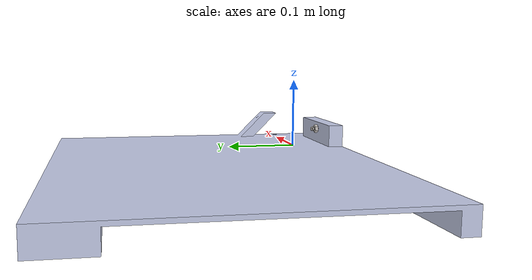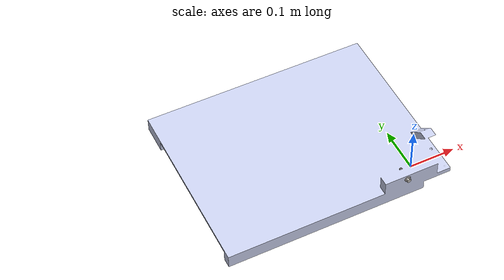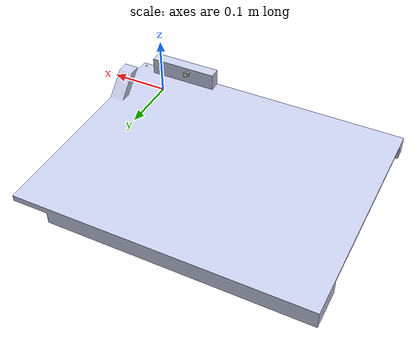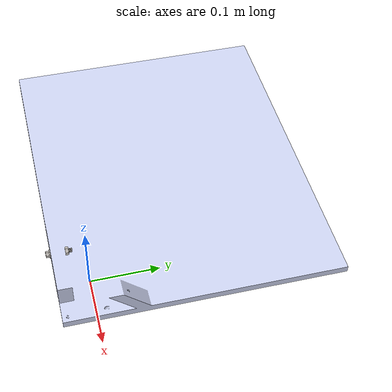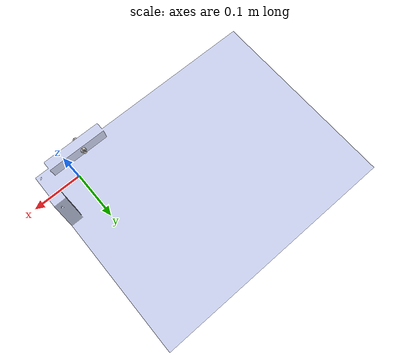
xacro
<?xml version="1.0" encoding="utf-8"?>
<robot   name="battery_pack_describe"  xmlns:xacro="http://www.ros.org/wiki/xacro">
  <link
    name="h_battery_base_link">
    <inertial>
      <origin
        xyz="-0.17823 0.0014541 -0.18254"
        rpy="0 0 0" />
      <mass
        value="2.1452" />
      <inertia
        ixx="0.04437"
        ixy="-0.00066651"
        ixz="-0.0054047"
        iyy="0.089539"
        iyz="-0.0010719"
        izz="0.045613" />
    </inertial>
    <visual>
      <origin
        xyz="0 0 0"
        rpy="0 0 0" />
      <geometry>
        <mesh     filename="package://battery_pack_describe/meshes/v_battery_base_link.dae" />

      </geometry>
      <material
        name="">
        <color
          rgba="0.79216 0.81961 0.93333 1" />
      </material>
    </visual>
    <collision>
      <origin
        xyz="0 0 0"
        rpy="0 0 0" />
      <geometry>
        <box size="0.5 0.5 0.05" />
        <mesh     filename="package://battery_pack_describe/meshes/v_battery_base_link.dae" />
      </geometry>
    </collision>
  </link>

  <gazebo reference="h_battery_base_link">
      <maxVel>0.01</maxVel>
      <kd>1</kd>
      <maxContacts>20</maxContacts>
      <mu2>50000</mu2>
      <selfCollide>0</selfCollide>
      <mu1>50000</mu1>
      <minDepth>0</minDepth>
      <kp>1000000000000.0</kp>
  </gazebo>

  <link
    name="h_bolt_Link">
    <inertial>
      <origin
        xyz="-0.0222479735541268 -9.0784925931009E-10 2.52273613804421E-09"
        rpy="0 0 0" />
      <mass
        value="0.010043058879212" />
      <inertia
        ixx="8.16036465000951E-08"
        ixy="-1.00752974041648E-13"
        ixz="2.77939961727333E-13"
        iyy="1.22914693737395E-06"
        iyz="-1.20094091925575E-13"
        izz="1.22914681810822E-06" />
    </inertial>
    <visual>
      <origin
        xyz="0 0 0"
        rpy="0 0 0" />
      <geometry>
        <mesh
          filename="package://battery_pack_describe/meshes/h_bolt_Link.STL" />
      </geometry>
      <material
        name="">
        <color
          rgba="0.776470588235294 0.756862745098039 0.737254901960784 1" />
      </material>
    </visual>
    <collision>
      <origin
        xyz="0 0 0"
        rpy="0 0 0" />
      <geometry>
        <cylinder length="0.04" radius="0.02"/>
        <mesh
          filename="package://battery_pack_describe/meshes/h_bolt_Link.STL" />
      </geometry>
    </collision>
  </link>

  <gazebo reference="h_bolt_Link">
      <maxVel>0.01</maxVel>
      <kd>1</kd>
      <maxContacts>20</maxContacts>
      <mu2>50000</mu2>
      <selfCollide>0</selfCollide>
      <mu1>50000</mu1>
      <minDepth>0</minDepth>
      <kp>1000000000000.0</kp>
    <material>Gazebo/Grey </material>
  </gazebo>

  <joint
    name="h_bolt_joint"
    type="continuous">
    <origin
      xyz="-0.036344 -0.016452 0.03"
      rpy="1.9639 0 1.5708" />
    <parent
      link="h_battery_base_link" />
    <child
      link="h_bolt_Link" />
    <axis
      xyz="1 0 0" />
  </joint>
  <link
    name="h_nut_Link">
    <inertial>
      <origin
        xyz="-8.23260334903431E-10 6.93889390390723E-18 -0.0026006024331304"
        rpy="0 0 0" />
      <mass
        value="0.00265736664598247" />
      <inertia
        ixx="2.79753045005072E-08"
        ixy="4.13590306276514E-24"
        ixz="1.31793635416195E-18"
        iyy="2.79771327058772E-08"
        iyz="-4.83267733668677E-14"
        izz="4.46160415460722E-08" />
    </inertial>
    <visual>
      <origin
        xyz="0 0 0"
        rpy="0 0 0" />
      <geometry>
        <mesh
          filename="package://battery_pack_describe/meshes/h_nut_Link.STL" />
      </geometry>
      <material
        name="">
        <color
          rgba="0.776470588235294 0.756862745098039 0.737254901960784 1" />
      </material>
    </visual>
    <collision>
      <origin
        xyz="0 0 0"
        rpy="0 0 0" />
      <geometry>
        <mesh
          filename="package://battery_pack_describe/meshes/h_nut_Link.STL" />
      </geometry>
    </collision>
  </link>

      <gazebo reference="h_nut_Link">
    <material>Gazebo/Gray</material>
  </gazebo>

  <joint
    name="h_nut_joint"
    type="continuous">
    <origin
      xyz="-0.036344 -0.021252 0.03"
      rpy="1.5708 0.39309 -3.1416" />
    <parent
      link="h_battery_base_link" />
    <child
      link="h_nut_Link" />
    <axis
      xyz="0 0 1" />
  </joint>
</robot>
